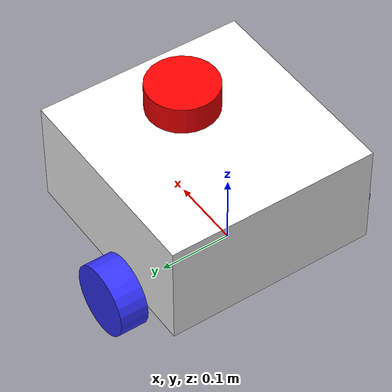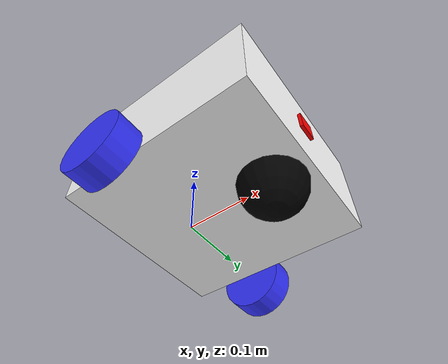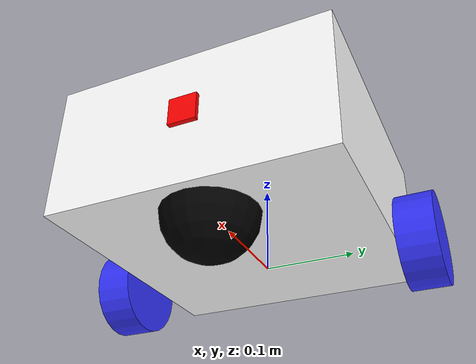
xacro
<?xml version="1.0"?>
<robot xmlns:xacro="http://www.ros.org/wiki/xacro" name="robot">

    <xacro:include filename="robot_core.xacro"/>
    <xacro:include filename="lidar.xacro"/>
    <xacro:include filename="camera.xacro"/>
    <xacro:include filename="ros2_control.xacro"/>

</robot>

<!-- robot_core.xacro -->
<robot xmlns:xacro="http://www.ros.org/wiki/xacro" >

    <xacro:include filename="inertial_macros.xacro"/>

    <material name="white">
        <color rgba="1 1 1 1" />
    </material>

    <material name="orange">
        <color rgba="1 0.3 0.1 1"/>
    </material>

    <material name="blue">
        <color rgba="0.2 0.2 1 1"/>
    </material>

    <material name="black">
        <color rgba="0 0 0 1"/>
    </material>

    <material name="red">
        <color rgba="1 0 0 1"/>
    </material>

    <link name="base_footprint"></link>

    <joint name="base_footprint_joint" type="fixed">
      <parent link="base_footprint"/>
      <child link="base_link"/>
      <origin xyz="0 0 0" rpy="0 0 0"/>
    </joint>

    <link name="base_link">
        <visual>
            <origin xyz="0.05 0 0.075"/>
            <geometry>
                <box size="0.3 0.3 0.15"/>
            </geometry>
            <material name="white"/>
        </visual>
        <collision>
            <origin xyz="0.05 0 0.075"/>
            <geometry>
                <box size="0.3 0.3 0.15"/>
            </geometry>
        </collision>
        <xacro:inertial_box mass="0.5" x="0.3" y="0.3" z="0.15">
            <origin xyz="0.05 0 0.075" rpy="0 0 0"/>
        </xacro:inertial_box>
    </link>

    <gazebo reference="base_link">
        <material>Gazebo/White</material>
    </gazebo>

    <joint name="left_wheel_joint" type="continuous">
        <parent link="base_link"/>
        <child link="left_wheel"/>
        <origin xyz="0 0.175 0" rpy="-${pi/2} 0 0" />
        <axis xyz="0 0 1"/>
    </joint>

    <link name="left_wheel">
        <visual>
            <geometry>
                <cylinder radius="0.05" length="0.04"/>
            </geometry>
            <material name="blue"/>
        </visual>
        <collision>
            <geometry>
                <cylinder radius="0.05" length="0.04"/>
            </geometry>
        </collision>
        <xacro:inertial_cylinder mass="0.1" length="0.04" radius="0.05">
            <origin xyz="0 0 0" rpy="0 0 0"/>
        </xacro:inertial_cylinder>
    </link>

    <gazebo reference="left_wheel">
        <material>Gazebo/Blue</material>
        <mu1>0.8</mu1>
        <mu2>0.8</mu2>
    </gazebo>

    <joint name="right_wheel_joint" type="continuous">
        <parent link="base_link"/>
        <child link="right_wheel"/>
        <origin xyz="0 -0.175 0" rpy="${pi/2} 0 0" />
        <axis xyz="0 0 -1"/>
    </joint>

    <link name="right_wheel">
        <visual>
            <geometry>
                <cylinder radius="0.05" length="0.04"/>
            </geometry>
            <material name="blue"/>
        </visual>
        <collision>
            <geometry>
                <cylinder radius="0.05" length="0.04"/>
            </geometry>
        </collision>
        <xacro:inertial_cylinder mass="0.1" length="0.04" radius="0.05">
            <origin xyz="0 0 0" rpy="0 0 0"/>
        </xacro:inertial_cylinder>
    </link>

    <gazebo reference="right_wheel">
        <material>Gazebo/Blue</material>
        <mu1>0.8</mu1>
        <mu2>0.8</mu2>
    </gazebo>

    <joint name="caster_wheel_joint" type="fixed">
        <parent link="base_link"/>
        <child link="caster_wheel"/>
        <origin xyz="0.14 0 0"/>
    </joint>

    <link name="caster_wheel">
        <visual>
            <geometry>
                <sphere radius="0.05"/>
            </geometry>
            <material name="black"/>
        </visual>
        <collision>
            <geometry>
                <sphere radius="0.05"/>
            </geometry>
        </collision>
        <xacro:inertial_sphere mass="0.1" radius="0.05">
            <origin xyz="0 0 0" rpy="0 0 0"/>
        </xacro:inertial_sphere>
    </link>

    <gazebo reference="caster_wheel">
        <material>Gazebo/Black</material>
        <mu1 value="0.001"/>
        <mu2 value="0.001"/>
    </gazebo>

</robot>

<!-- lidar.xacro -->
<robot xmlns:xacro="http://www.ros.org/wiki/xacro" name="robot">

    <joint name="laser_joint" type="fixed">
        <parent link="base_link"/>
        <child link="laser_frame"/>
        <origin xyz="0.1 0 0.175" rpy="0 0 0"/>
    </joint>

    <link name="laser_frame">
        <visual>
            <geometry>
                <cylinder radius="0.05" length="0.04"/>
            </geometry>
            <material name="red"/>
        </visual>
        <collision>
            <geometry>
                <cylinder radius="0.05" length="0.04"/>
            </geometry>
        </collision>
        <xacro:inertial_cylinder mass="0.1" length="0.04" radius="0.05">
            <origin xyz="0 0 0" rpy="0 0 0"/>
        </xacro:inertial_cylinder>
    </link>

    <gazebo reference="laser_frame">
        <material>Gazebo/Red</material>

        <sensor name="laser" type="ray">
            <pose> 0 0 0 0 0 0 </pose>
            <visualize>true</visualize>
            <update_rate>10</update_rate>
            <ray>
                <scan>
                    <horizontal>
                        <samples>360</samples>
                        <min_angle>-3.14</min_angle>
                        <max_angle>3.14</max_angle>
                    </horizontal>
                </scan>
                <range>
                    <min>0.3</min>
                    <max>12</max>
                </range>
            </ray>
            <plugin filename="libgz-sim-ros2-lidar-system.so"
                    name="gz::sim::systems::Ros2Lidar">
                <topic>/scan</topic>
                <frame_id>laser_frame</frame_id>
            </plugin>
        </sensor>
    </gazebo>

</robot>

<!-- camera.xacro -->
<robot xmlns:xacro="http://www.ros.org/wiki/xacro" name="robot">

    <joint name="camera_joint" type="fixed">
        <parent link="base_link"/>
        <child link="camera_link"/>
        <origin xyz="0.2 0 0.08" rpy="0 0 0"/>
    </joint>

    <link name="camera_link">
        <visual>
            <geometry>
                <box size="0.010 0.03 0.03"/>
            </geometry>
            <material name="red"/>
        </visual>
    </link>

    <joint name="camera_optical_joint" type="fixed">
        <parent link="camera_link"/>
        <child link="camera_link_optical"/>
        <origin xyz="0 0 0" rpy="${-pi/2} 0 ${-pi/2}"/>
    </joint>

    <link name="camera_link_optical"></link>

    <gazebo reference="camera_link">
        <material>Gazebo/Red</material>

        <sensor name="camera" type="camera">
            <pose>0 0 0 0 0 0</pose>
            <visualize>true</visualize>
            <update_rate>10</update_rate>

            <topic>/camera</topic>

            <camera>
                <horizontal_fov>1.089</horizontal_fov>
                <image>
                    <format>R8G8B8</format>
                    <width>640</width>
                    <height>480</height>
                </image>
                <clip>
                    <near>0.05</near>
                    <far>8.0</far>
                </clip>
            </camera>

            </sensor>
    </gazebo>

</robot>
